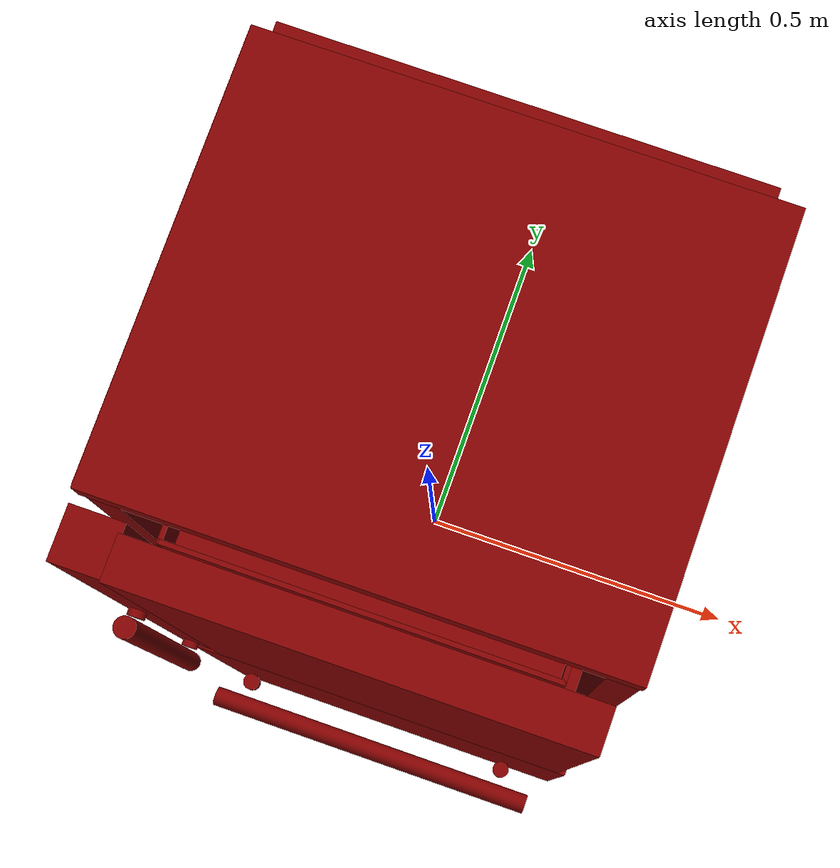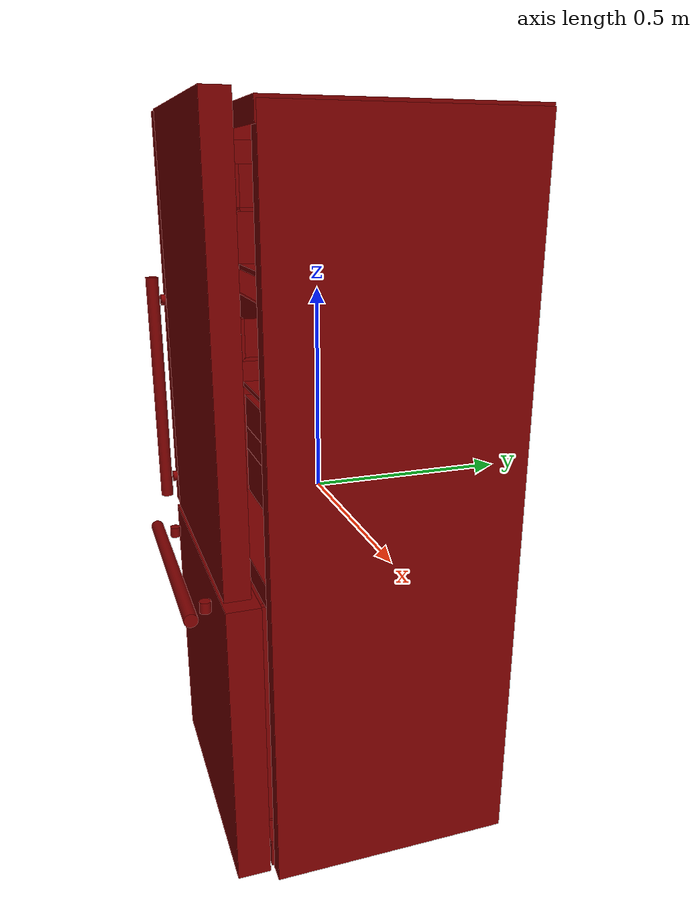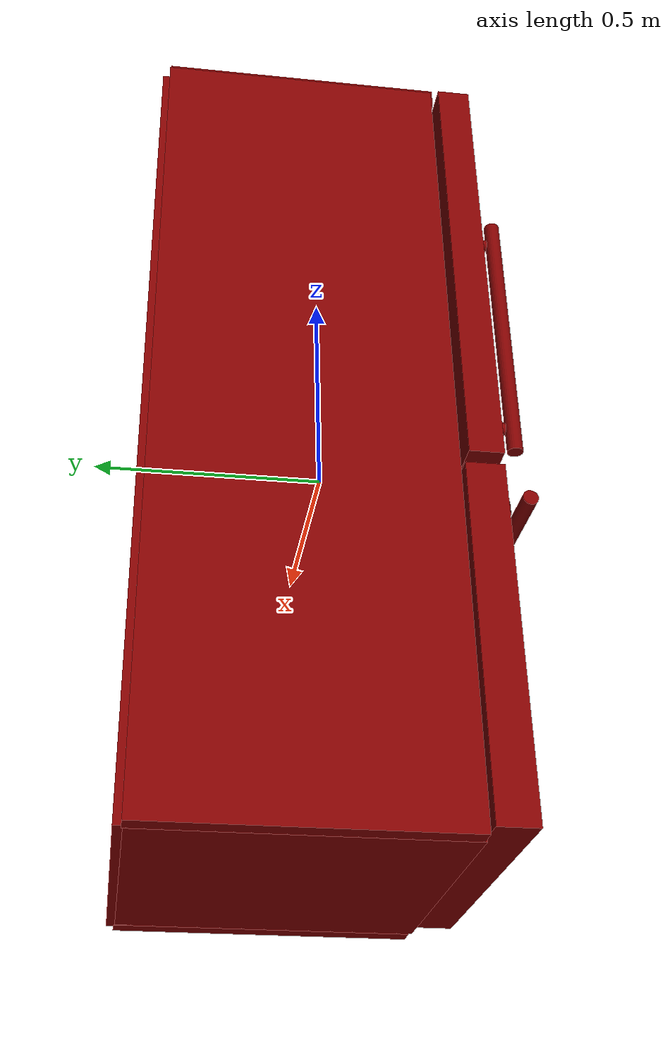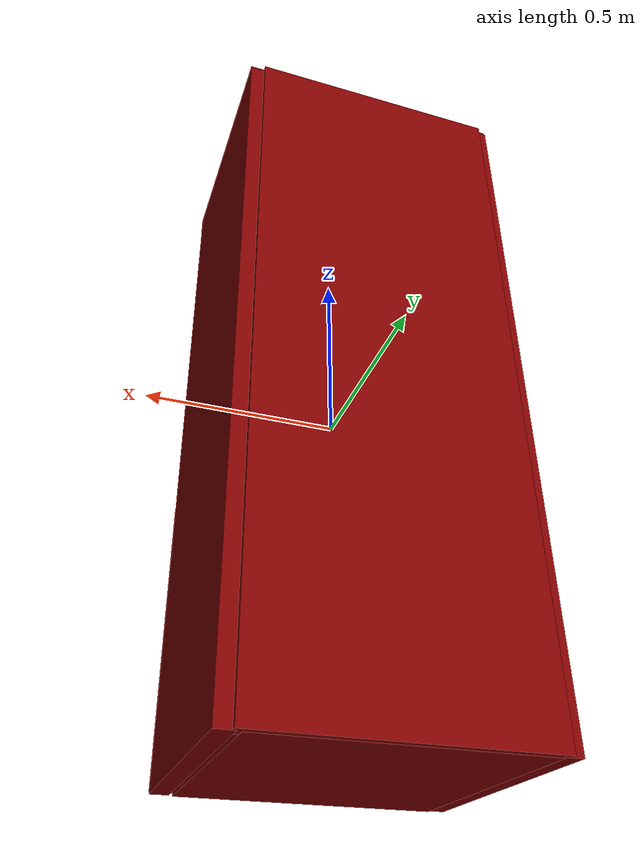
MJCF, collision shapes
<?xml version='1.0' encoding='UTF-8'?>
<mujoco model="model">
  <option timestep="0.005" gravity="0.0 0.0 -9.81"/>
  <compiler angle="radian"/>
  <asset>
    <mesh file="visuals/freezer0.obj" name="freezer0_vis"/>
    <mesh file="visuals/fridge_door.obj" name="fridge_door_vis"/>
    <mesh file="visuals/fridge_door_Clear.obj" name="fridge_door_Clear_vis"/>
    <mesh file="visuals/fridge_drawer0.obj" name="fridge_drawer0_vis"/>
    <mesh file="visuals/Body001.obj" name="Body001_vis"/>
    <texture file="visuals/T_BC001.png" name="Body001_material" type="2d"/>
    <material name="Body001_material" rgba="1 1 1 1.0" texture="Body001_material" shininess="0.5" specular="0.3103448502657381"/>
    <texture file="visuals/T_BC001.png" name="freezer0_material" type="2d"/>
    <material name="freezer0_material" rgba="1 1 1 1.0" texture="freezer0_material" shininess="0.5" specular="0.3103448502657381"/>
    <texture file="visuals/T_BC001.png" name="fridge_door_material" type="2d"/>
    <material name="fridge_door_material" rgba="1 1 1 1.0" texture="fridge_door_material" shininess="0.5" specular="0.3103448502657381"/>
    <material name="fridge_door_Clear_material" rgba="0.5314206480979919 0.5314206480979919 0.5314206480979919 0.699999988079071" shininess="0.5" specular="0.3103448502657381"/>
    <texture file="visuals/T_BC001.png" name="fridge_drawer0_material" type="2d"/>
    <material name="fridge_drawer0_material" rgba="1 1 1 1.0" texture="fridge_drawer0_material" shininess="0.5" specular="0.3103448502657381"/>
  </asset>
  <default>
    <default class="visual">
      <geom conaffinity="0" contype="0" group="1" type="mesh"/>
    </default>
    <default class="collision">
      <geom group="0" rgba="0.5 0 0 0.5"/>
    </default>
    <default class="spawn">
      <geom group="0" rgba="1 1 1 0.5" contype="0" conaffinity="0"/>
      <site group="0" rgba="1 1 1 0.5"/>
    </default>
    <default class="region">
      <geom group="1" conaffinity="0" contype="0" rgba="0 1 0 0"/>
    </default>
  </default>
  <worldbody>
    <body>
      <body name="object">
        <geom mesh="Body001_vis" type="mesh" solimp="0.998 0.998 0.001" solref="0.001 1" friction="0.95 0.3 0.1" class="visual" material="Body001_material"/>
        <geom class="collision" type="box" pos="0.33995542 0.08392659 -0.01042761" size="0.022092727944254875 0.30839863419532776 0.8937559127807617" quat="1.0 0.0 0.0 0.0"/>
        <geom class="collision" type="box" pos="-0.33999124 0.08348067 -0.01042761" size="0.02204258367419243 0.3083536624908447 0.8937559127807617" quat="1.0 0.0 0.0 0.0"/>
        <geom class="collision" type="box" pos="0.00042152 0.11954770 0.52507793" size="0.3166264593601227 0.24003517627716064 0.0066254460252821445" quat="1.0 0.0 0.0 0.0"/>
        <geom class="collision" type="box" pos="0.00042152 0.11954771 0.20452394" size="0.3166264593601227 0.24003517627716064 0.006625460926443338" quat="1.0 0.0 0.0 0.0"/>
        <geom class="collision" type="box" pos="-0.00359549 0.38514375 -0.01042761" size="0.3299996256828308 0.021513978019356728 0.8936187624931335" quat="1.0 0.0 0.0 0.0"/>
        <geom class="collision" type="box" pos="-0.00679178 0.08041040 -0.86751391" size="0.3156994581222534 0.3091362714767456 0.03766892850399017" quat="1.0 0.0 0.0 0.0"/>
        <geom class="collision" type="box" pos="0.00118460 0.08041040 0.86563985" size="0.3608611524105072 0.3091796338558197 0.024760033935308456" quat="1.0 0.0 0.0 0.0"/>
        <geom class="collision" type="box" pos="-0.00147515 0.07215296 -0.13973584" size="0.3271796405315399 0.2942807078361511 0.02908151037991047" quat="1.0 0.0 0.0 0.0"/>
        <body name="freezer0">
          <geom class="region" name="reg_freezer0" type="box" pos="-0.019423415000000013 0.04946547999999999 -0.503606005" size="0.23845832500000003 0.27158856 0.297866625"/>
          <joint axis="0.0 -1.0 0.0" pos="0.00075935 -0.02828271 -0.51135356" limited="true" name="freezer0_door_joint" range="0.0 0.4" type="slide" damping="1" frictionloss="1" armature=".01" stiffness="0.05"/>
          <geom mesh="freezer0_vis" type="mesh" solimp="0.998 0.998 0.001" solref="0.001 1" friction="0.95 0.3 0.1" class="visual" material="freezer0_material"/>
          <geom class="collision" type="box" pos="0.00493221 -0.28234271 -0.51257385" size="0.34287482500076294 0.04096737876534462 0.36951467394828796" quat="1.0 0.0 0.0 0.0" name="freezer0_door_main"/>
          <geom class="collision" type="box" pos="-0.01695795 0.33892961 -0.50920607" size="0.2550434172153473 0.011164618656039238 0.3090800344944" quat="1.0 0.0 0.0 0.0"/>
          <geom class="collision" type="box" pos="-0.27126998 0.03150898 -0.51064928" size="0.008100743405520916 0.30929043889045715 0.3109235465526581" quat="1.0 0.0 0.0 0.0"/>
          <geom class="collision" type="box" pos="0.23250833 0.03150898 -0.50928790" size="0.008088774047791958 0.30928948521614075 0.3089982271194458" quat="1.0 0.0 0.0 0.0"/>
          <geom class="collision" type="box" pos="-0.01695795 0.03707472 -0.81683929" size="0.2550411820411682 0.3109765946865082 0.009795001707971096" quat="1.0 0.0 0.0 0.0"/>
          <geom class="collision" type="cylinder" pos="0.01415945 -0.39179651 -0.17420965" size="0.016481643542647362 0.28538498282432556" quat="0.7071068286895752 -0.0 0.7071067690849304 0.0" name="freezer0_door_handle_main"/>
          <geom class="collision" type="cylinder" pos="-0.22035789 -0.34918837 -0.17533932" size="0.013792309910058975 0.013792324811220169" quat="1.0 0.0 0.0 0.0" name="freezer0_door_handle_1"/>
          <geom class="collision" type="cylinder" pos="0.24045724 -0.34918837 -0.17533932" size="0.013792300596833229 0.013792314566671848" quat="1.0 0.0 0.0 0.0" name="freezer0_door_handle_2"/>
        </body>
        <body name="fridge_door">
          <joint axis="0.0 0.0 1.0" pos="0.31769130 -0.29342843 0.38750966" limited="true" name="fridge_door_joint" range="0.0 1.5707963267948966" type="hinge" damping="1" frictionloss="1" armature=".01" stiffness="0.05"/>
          <geom mesh="fridge_door_vis" type="mesh" solimp="0.998 0.998 0.001" solref="0.001 1" friction="0.95 0.3 0.1" class="visual" material="fridge_door_material"/>
          <geom class="collision" type="box" pos="0.02564066 -0.29230003 0.39038660" size="0.3090619146823883 0.031015874817967415 0.5147960782051086" quat="1.0 0.0 0.0 0.0" name="fridge_door_main"/>
          <geom class="collision" type="box" pos="0.00614246 -0.16094121 0.73015230" size="0.2689642906188965 0.0034259234089404345 0.043268319219350815" quat="1.0 0.0 0.0 0.0"/>
          <geom class="collision" type="box" pos="-0.31471789 -0.28393428 0.38953792" size="0.03672926500439644 0.036700353026390076 0.5139484405517578" quat="1.0 0.0 0.0 0.0"/>
          <geom class="collision" type="box" pos="0.00614246 -0.24498714 0.73015230" size="0.2689642906188965 0.003426029346883297 0.043268319219350815" quat="1.0 0.0 0.0 0.0"/>
          <geom class="collision" type="box" pos="0.00614246 -0.20365443 0.69053059" size="0.2689642906188965 0.04326627030968666 0.003921642433851957" quat="1.0 0.0 0.0 0.0"/>
          <geom class="collision" type="box" pos="0.27138701 -0.20374415 0.73015230" size="0.0034263073466718197 0.04461939260363579 0.043268319219350815" quat="1.0 0.0 0.0 0.0"/>
          <geom class="collision" type="box" pos="-0.26153165 -0.20374415 0.73015230" size="0.0034263073466718197 0.04461947828531265 0.043268319219350815" quat="1.0 0.0 0.0 0.0"/>
          <geom class="collision" type="box" pos="0.00614246 -0.16094121 0.43602385" size="0.2689642906188965 0.0034260826651006937 0.043268319219350815" quat="1.0 0.0 0.0 0.0"/>
          <geom class="collision" type="box" pos="0.00614246 -0.24498714 0.43602385" size="0.2689642906188965 0.0034260933753103018 0.043268319219350815" quat="1.0 0.0 0.0 0.0"/>
          <geom class="collision" type="box" pos="0.00614246 -0.20365443 0.39640214" size="0.2689642906188965 0.04326678439974785 0.003921642433851957" quat="1.0 0.0 0.0 0.0"/>
          <geom class="collision" type="box" pos="0.27138701 -0.20374415 0.43602385" size="0.0034263073466718197 0.044619906693696976 0.043268319219350815" quat="1.0 0.0 0.0 0.0"/>
          <geom class="collision" type="box" pos="-0.26153165 -0.20374415 0.43602385" size="0.0034263073466718197 0.04461999237537384 0.043268319219350815" quat="1.0 0.0 0.0 0.0"/>
          <geom class="collision" type="cylinder" pos="-0.32151002 -0.35195247 0.20168905" size="0.016481643542647362 0.30258530378341675" quat="1.0 0.0 0.0 0.0" name="fridge_door_handle_main"/>
          <geom class="collision" type="cylinder" pos="-0.32420373 -0.30348505 -0.04907634" size="0.013792290352284908 0.028793584555387497" quat="0.7071067094802856 0.7071068286895752 0.0 0.0" name="fridge_door_handle_2"/>
          <geom class="collision" type="cylinder" pos="-0.32420373 -0.30348505 0.44506760" size="0.013792290352284908 0.028793584555387497" quat="0.7071067094802856 0.7071068286895752 0.0 0.0" name="fridge_door_handle_1"/>
          <body name="fridge_door_Clear">
            <geom mesh="fridge_door_Clear_vis" type="mesh" solimp="0.998 0.998 0.001" solref="0.001 1" friction="0.95 0.3 0.1" class="visual" material="fridge_door_Clear_material"/>
            <geom class="collision" type="box" pos="0.00614246 -0.16094121 0.73015230" size="0.2689642906188965 0.0034259234089404345 0.043268319219350815" quat="1.0 0.0 0.0 0.0"/>
            <geom class="collision" type="box" pos="0.00614246 -0.24498714 0.73015230" size="0.2689642906188965 0.003426029346883297 0.043268319219350815" quat="1.0 0.0 0.0 0.0"/>
            <geom class="collision" type="box" pos="0.00614246 -0.20365443 0.69053059" size="0.2689642906188965 0.04326627030968666 0.003921642433851957" quat="1.0 0.0 0.0 0.0"/>
            <geom class="collision" type="box" pos="0.27138701 -0.20374415 0.73015230" size="0.0034263073466718197 0.04461939260363579 0.043268319219350815" quat="1.0 0.0 0.0 0.0"/>
            <geom class="collision" type="box" pos="-0.26153165 -0.20374415 0.73015230" size="0.0034263073466718197 0.04461947828531265 0.043268319219350815" quat="1.0 0.0 0.0 0.0"/>
            <geom class="collision" type="box" pos="0.00614246 -0.16094121 0.43602385" size="0.2689642906188965 0.0034260826651006937 0.043268319219350815" quat="1.0 0.0 0.0 0.0"/>
            <geom class="collision" type="box" pos="0.00614246 -0.24498714 0.43602385" size="0.2689642906188965 0.0034260933753103018 0.043268319219350815" quat="1.0 0.0 0.0 0.0"/>
            <geom class="collision" type="box" pos="0.00614246 -0.20365443 0.39640214" size="0.2689642906188965 0.04326678439974785 0.003921642433851957" quat="1.0 0.0 0.0 0.0"/>
            <geom class="collision" type="box" pos="0.27138701 -0.20374415 0.43602385" size="0.0034263073466718197 0.044619906693696976 0.043268319219350815" quat="1.0 0.0 0.0 0.0"/>
            <geom class="collision" type="box" pos="-0.26153165 -0.20374415 0.43602385" size="0.0034263073466718197 0.04461999237537384 0.043268319219350815" quat="1.0 0.0 0.0 0.0"/>
          </body>
        </body>
        <body name="fridge_drawer0">
          <geom class="region" name="reg_fridge_drawer0" type="box" pos="-0.011609080000000008 0.11568249 0.038561235" size="0.25176318000000003 0.20137879 0.108402895"/>
          <joint axis="0.0 -1.0 0.0" pos="-0.01253176 0.10755186 0.04260145" limited="true" name="fridge_drawer0_joint" range="0.0 0.5" type="slide" damping="1" frictionloss="1" armature=".01" stiffness="0.05"/>
          <geom mesh="fridge_drawer0_vis" type="mesh" solimp="0.998 0.998 0.001" solref="0.001 1" friction="0.95 0.3 0.1" class="visual" material="fridge_drawer0_material"/>
          <geom class="collision" type="box" pos="-0.01164859 -0.10847254 0.13609040" size="0.27250954508781433 0.015277393162250519 0.044902391731739044" quat="1.0 0.0 0.0 0.0"/>
          <geom class="collision" type="box" pos="-0.01219117 0.11839790 -0.07925883" size="0.25717705488204956 0.2129560261964798 0.0035505364648997784" quat="1.0 0.0 0.0 0.0"/>
          <geom class="collision" type="box" pos="-0.00955198 0.33507427 0.03649667" size="0.25734734535217285 0.005608396138995886 0.11496076732873917" quat="1.0 0.0 0.0 0.0"/>
          <geom class="collision" type="box" pos="-0.27483922 0.12083306 0.03586176" size="0.005590651649981737 0.21548551321029663 0.1143258586525917" quat="1.0 0.0 0.0 0.0"/>
          <geom class="collision" type="box" pos="0.25079459 0.12658310 0.03693517" size="0.0055906688794493675 0.22123685479164124 0.11539925634860992" quat="1.0 0.0 0.0 0.0"/>
          <geom class="collision" type="box" pos="-0.01164859 -0.10777646 -0.03517217" size="0.2725437581539154 0.01597566343843937 0.06356113404035568" quat="1.0 0.0 0.0 0.0"/>
          <geom class="collision" type="box" pos="-0.16901363 -0.10847254 0.05846065" size="0.11518455296754837 0.015279702842235565 0.03230619803071022" quat="1.0 0.0 0.0 0.0"/>
          <geom class="collision" type="box" pos="0.16871609 -0.10847254 0.05846065" size="0.09108095616102219 0.01527977455407381 0.03230619803071022" quat="1.0 0.0 0.0 0.0"/>
          <geom class="collision" type="box" pos="0.01321461 -0.12121892 0.08025171" size="0.06605290621519089 0.002533821389079094 0.010721615515649319" quat="1.0 0.0 0.0 0.0"/>
          <geom class="collision" type="box" pos="0.01321461 -0.09489299 0.05873815" size="0.06605316698551178 0.0013497284380719066 0.03123100847005844" quat="1.0 0.0 0.0 0.0"/>
        </body>
        <geom class="region" name="reg_fridge_shelf0" type="box" pos="0.0005849300000000113 0.11994953 0.36542039" size="0.30983839999999996 0.2327333 0.14783490999999999"/>
        <geom class="region" name="reg_fridge_shelf1" type="box" pos="0.0005849300000000113 0.11994953 0.686225195" size="0.30983839999999996 0.2327333 0.150364145"/>
        <geom class="region" name="reg_main" type="box" pos="5.4999999998806004e-08 0.040381539999999994 -3.9999999978945766e-08" size="0.363045705 0.36727811 0.90618272"/>
      </body>
    </body>
  </worldbody>
  <actuator>
    <motor name="freezer0_door_joint_actuator" joint="freezer0_door_joint" gear="50"/>
    <motor name="fridge_door_joint_actuator" joint="fridge_door_joint" gear="50"/>
    <motor name="fridge_drawer0_joint_actuator" joint="fridge_drawer0_joint" gear="50"/>
  </actuator>
</mujoco>
